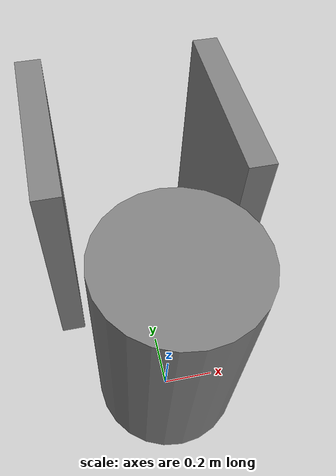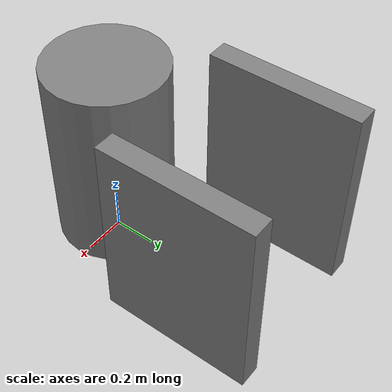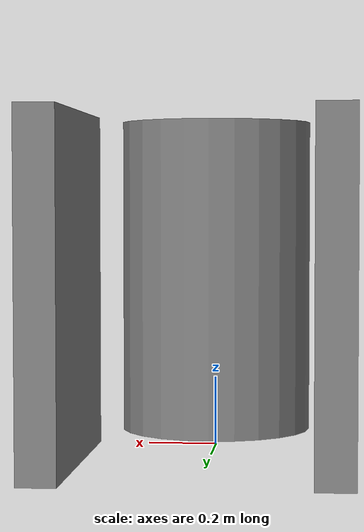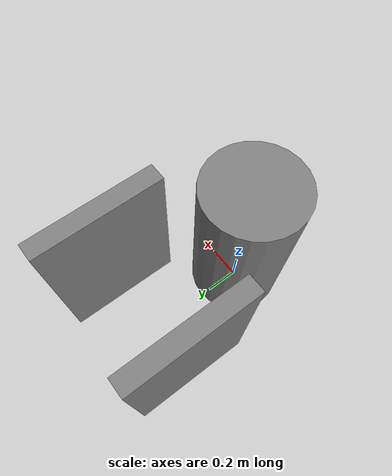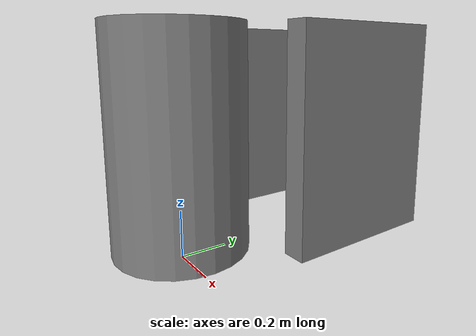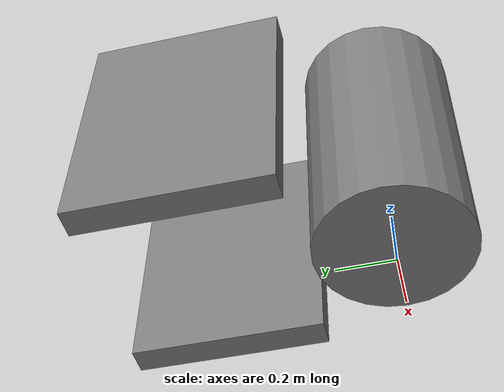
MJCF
<mujoco model="pr2_model">
    <worldbody name="base">
        <body name="pr2" pos="0 0 0.5">
            <joint axis="1 0 0" name="robot_x" type="slide" pos="0 0 0" armature="0.02"/>
            <joint axis="0 1 0" name="robot_y" type="slide" pos="0 0 0" armature="0.02"/>
            <joint axis="0 0 1" name="robot_theta" type="hinge" pos="0 0 0" armature="0.001" limited="true" range="-3.15 3.15"/>
            <geom name="pr2" type="cylinder" size="0.275 0.45" />
            <inertial pos="0 0 0" mass="10" diaginertia="0.001 0.001 0.001" />
            <body name="right_finger" pos="-0.35 0.65 0" euler="0 0 0">
                <inertial pos="0 0 0" mass="3" diaginertia="0.001 0.001 0.001" />
                <joint name="right_finger_joint" axis="1 0 0" limited="true" range="-0.1 0.1" type="slide" solreflimit="0.02 0.9" solimplimit="0.95 1. 0.0001" armature="0.005" />
                <geom pos="0 0 0" size="0.05 0.3495 0.45" type="box" friction="1.9 0.95 0.0005" />
            </body>
            <body name="left_finger" pos="0.35 0.65 0" euler="0 0 0">
                <inertial pos="0 0 0" mass="3" diaginertia="0.001 0.001 0.001" />
                <joint name="left_finger_joint" axis="-1 0 0" limited="true" range="-0.1 0.1" type="slide" solreflimit="0.02 0.9" solimplimit="0.95 1. 0.0001" armature="0.005" />
                <geom pos="0 0 0" size="0.05 0.3495 0.45" type="box" friction="1.9 0.95 0.0005" />
            </body>
        </body>
    </worldbody>

    <actuator>
        <velocity kv="1500" joint="robot_x" name="robot_x" ctrllimited="true" ctrlrange="-20 20" />
        <velocity kv="1500" joint="robot_y" name="robot_y" ctrllimited="true" ctrlrange="-20 20" />
        <velocity kv="200" joint="robot_theta" name="robot_theta" ctrllimited="true" ctrlrange="-20 20" />
        <motor gear="200" joint="left_finger_joint" name="left_grip" ctrllimited="true" ctrlrange="-5000 5000" />
        <motor gear="200" joint="right_finger_joint" name="right_grip" ctrllimited="true" ctrlrange="-5000 5000" />
    </actuator>
</mujoco>
